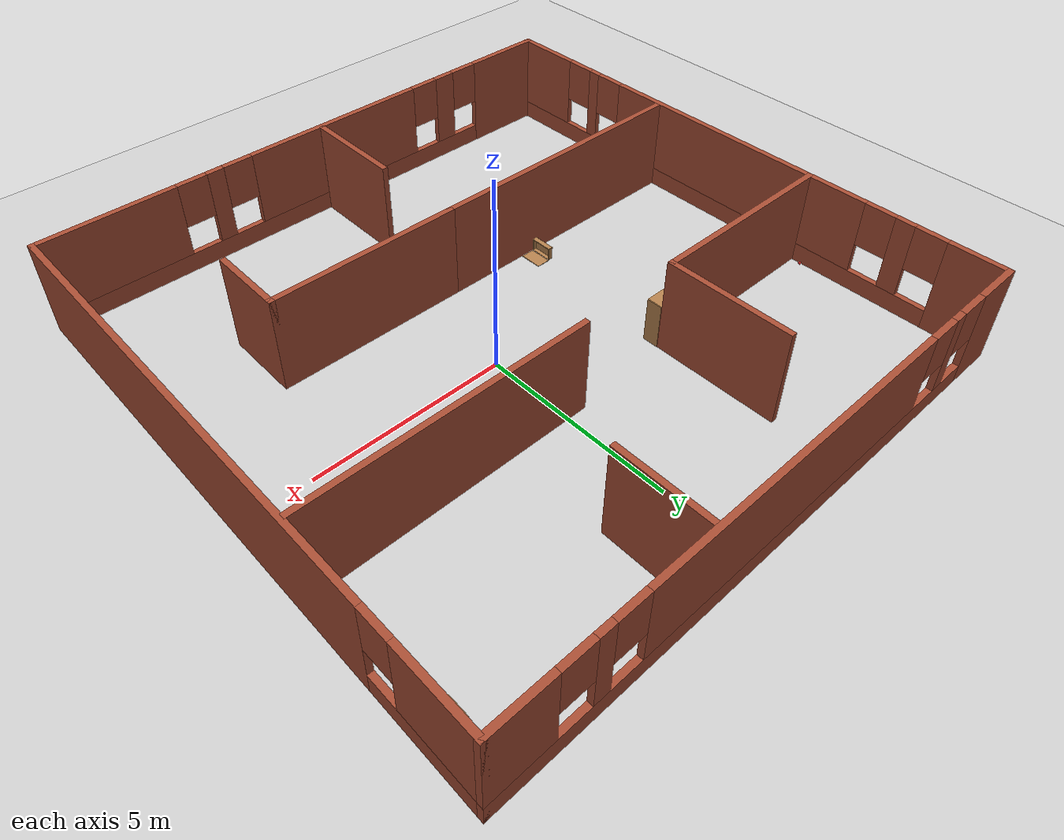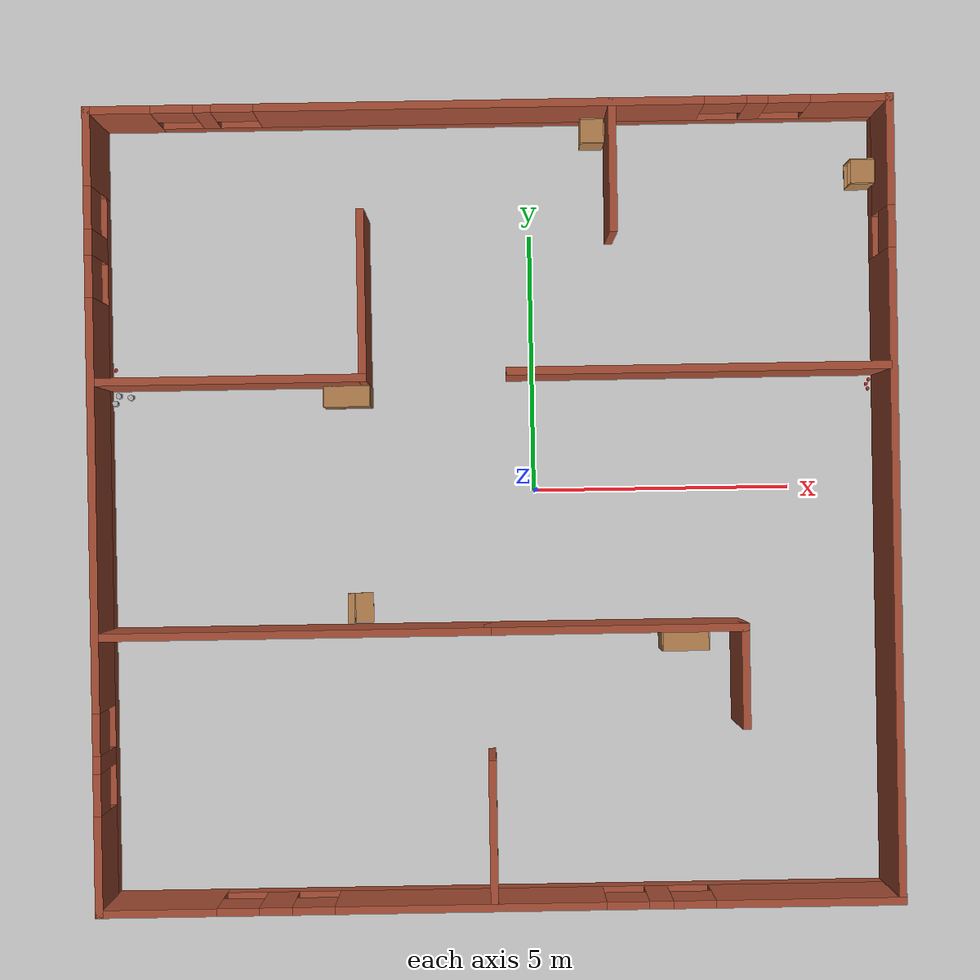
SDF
<sdf version="1.7">
 <world name="default">
  <light name="sun" type="directional">
   <pose>0 0 10 0 -0 0</pose>
   <diffuse>0.8 0.8 0.8 1</diffuse>
   <specular>0.2 0.2 0.2 1</specular>
   <attenuation>
    <range>1000</range>
    <constant>0.9</constant>
    <linear>0.01</linear>
    <quadratic>0.001</quadratic>
   </attenuation>
   <direction>-0.5 0.1 -0.9</direction>
   <spot><inner_angle>0</inner_angle><outer_angle>0</outer_angle><falloff>0</falloff></spot>
  </light>
  <gravity>0 0 -9.8</gravity>
  <magnetic_field>6e-06 2.3e-05 -4.2e-05</magnetic_field>
  <atmosphere type="adiabatic"/>
  <physics type="ode">
   <max_step_size>0.001</max_step_size>
   <real_time_factor>1</real_time_factor>
   <real_time_update_rate>1000</real_time_update_rate>
  </physics>
  <scene><ambient>0.4 0.4 0.4 1</ambient><background>0.7 0.7 0.7 1</background><shadows>1</shadows></scene>
  <audio><device>default</device></audio>
  <spherical_coordinates>
   <surface_model>EARTH_WGS84</surface_model>
   <latitude_deg>0</latitude_deg>
   <longitude_deg>0</longitude_deg>
   <elevation>0</elevation>
   <heading_deg>0</heading_deg>
  </spherical_coordinates>
  <model name="Untitled">
   <pose>-0.78287 -0.28522 0 0 -0 0</pose>
   <link name="Wall_0">
    <pose>-7.55 0 0 0 -0 -1.5708</pose>
    <visual name="Wall_0_Visual_0">
     <pose>-6.87927 0 1.25 0 -0 0</pose>
     <geometry><box><size>1.49145 0.15 2.5</size></box></geometry>
     <material>
      <script><uri>file://media/materials/scripts/gazebo.material</uri><name>Gazebo/Bricks</name></script>
      <ambient>1 1 1 1</ambient>
     </material>
     <meta><layer>0</layer></meta>
    </visual>
    <collision name="Wall_0_Collision_0">
     <geometry><box><size>1.49145 0.15 2.5</size></box></geometry>
     <pose>-6.87927 0 1.25 0 -0 0</pose>
    </collision>
    <visual name="Wall_0_Visual_1">
     <pose>0.745725 0 0.25 0 -0 0</pose>
     <geometry><box><size>13.7586 0.15 0.5</size></box></geometry>
     <material>
      <script><uri>file://media/materials/scripts/gazebo.material</uri><name>Gazebo/Bricks</name></script>
      <ambient>1 1 1 1</ambient>
     </material>
     <meta><layer>0</layer></meta>
    </visual>
    <collision name="Wall_0_Collision_1">
     <geometry><box><size>13.7586 0.15 0.5</size></box></geometry>
     <pose>0.745725 0 0.25 0 -0 0</pose>
    </collision>
    <visual name="Wall_0_Visual_2">
     <pose>-5.08626 0 1.5 0 -0 0</pose>
     <geometry><box><size>0.494579 0.15 2</size></box></geometry>
     <material>
      <script><uri>file://media/materials/scripts/gazebo.material</uri><name>Gazebo/Bricks</name></script>
      <ambient>1 1 1 1</ambient>
     </material>
     <meta><layer>0</layer></meta>
    </visual>
    <collision name="Wall_0_Collision_2">
     <geometry><box><size>0.494579 0.15 2</size></box></geometry>
     <pose>-5.08626 0 1.5 0 -0 0</pose>
    </collision>
    <visual name="Wall_0_Visual_3">
     <pose>-0.130454 0 1.5 0 -0 0</pose>
     <geometry><box><size>7.81704 0.15 2</size></box></geometry>
     <material>
      <script><uri>file://media/materials/scripts/gazebo.material</uri><name>Gazebo/Bricks</name></script>
      <ambient>1 1 1 1</ambient>
     </material>
     <meta><layer>0</layer></meta>
    </visual>
    <collision name="Wall_0_Collision_3">
     <geometry><box><size>7.81704 0.15 2</size></box></geometry>
     <pose>-0.130454 0 1.5 0 -0 0</pose>
    </collision>
    <visual name="Wall_0_Visual_4">
     <pose>4.74444 0 1.5 0 -0 0</pose>
     <geometry><box><size>0.332756 0.15 2</size></box></geometry>
     <material>
      <script><uri>file://media/materials/scripts/gazebo.material</uri><name>Gazebo/Bricks</name></script>
      <ambient>1 1 1 1</ambient>
     </material>
     <meta><layer>0</layer></meta>
    </visual>
    <collision name="Wall_0_Collision_4">
     <geometry><box><size>0.332756 0.15 2</size></box></geometry>
     <pose>4.74444 0 1.5 0 -0 0</pose>
    </collision>
    <visual name="Wall_0_Visual_5">
     <pose>6.66791 0 1.5 0 -0 0</pose>
     <geometry><box><size>1.91418 0.15 2</size></box></geometry>
     <material>
      <script><uri>file://media/materials/scripts/gazebo.material</uri><name>Gazebo/Bricks</name></script>
      <ambient>1 1 1 1</ambient>
     </material>
     <meta><layer>0</layer></meta>
    </visual>
    <collision name="Wall_0_Collision_5">
     <geometry><box><size>1.91418 0.15 2</size></box></geometry>
     <pose>6.66791 0 1.5 0 -0 0</pose>
    </collision>
    <visual name="Wall_0_Visual_6">
     <pose>-5.73355 0 1.9 0 -0 0</pose>
     <geometry><box><size>0.8 0.15 1.2</size></box></geometry>
     <material>
      <script><uri>file://media/materials/scripts/gazebo.material</uri><name>Gazebo/Bricks</name></script>
      <ambient>1 1 1 1</ambient>
     </material>
     <meta><layer>0</layer></meta>
    </visual>
    <collision name="Wall_0_Collision_6">
     <geometry><box><size>0.8 0.15 1.2</size></box></geometry>
     <pose>-5.73355 0 1.9 0 -0 0</pose>
    </collision>
    <visual name="Wall_0_Visual_7">
     <pose>-4.43897 0 1.9 0 -0 0</pose>
     <geometry><box><size>0.8 0.15 1.2</size></box></geometry>
     <material>
      <script><uri>file://media/materials/scripts/gazebo.material</uri><name>Gazebo/Bricks</name></script>
      <ambient>1 1 1 1</ambient>
     </material>
     <meta><layer>0</layer></meta>
    </visual>
    <collision name="Wall_0_Collision_7">
     <geometry><box><size>0.8 0.15 1.2</size></box></geometry>
     <pose>-4.43897 0 1.9 0 -0 0</pose>
    </collision>
    <visual name="Wall_0_Visual_8">
     <pose>4.17807 0 1.9 0 -0 0</pose>
     <geometry><box><size>0.8 0.15 1.2</size></box></geometry>
     <material>
      <script><uri>file://media/materials/scripts/gazebo.material</uri><name>Gazebo/Bricks</name></script>
      <ambient>1 1 1 1</ambient>
     </material>
     <meta><layer>0</layer></meta>
    </visual>
    <collision name="Wall_0_Collision_8">
     <geometry><box><size>0.8 0.15 1.2</size></box></geometry>
     <pose>4.17807 0 1.9 0 -0 0</pose>
    </collision>
    <visual name="Wall_0_Visual_9">
     <pose>5.31082 0 1.9 0 -0 0</pose>
     <geometry><box><size>0.8 0.15 1.2</size></box></geometry>
     <material>
      <script><uri>file://media/materials/scripts/gazebo.material</uri><name>Gazebo/Bricks</name></script>
      <ambient>1 1 1 1</ambient>
     </material>
     <meta><layer>0</layer></meta>
    </visual>
    <collision name="Wall_0_Collision_9">
     <geometry><box><size>0.8 0.15 1.2</size></box></geometry>
     <pose>5.31082 0 1.9 0 -0 0</pose>
    </collision>
   </link>
   <link name="Wall_11">
    <collision name="Wall_11_Collision">
     <geometry><box><size>2.5 0.15 2.5</size></box></geometry>
     <pose>0 0 1.25 0 -0 0</pose>
    </collision>
    <visual name="Wall_11_Visual">
     <pose>0 0 1.25 0 -0 0</pose>
     <geometry><box><size>2.5 0.15 2.5</size></box></geometry>
     <material>
      <script><uri>file://media/materials/scripts/gazebo.material</uri><name>Gazebo/Bricks</name></script>
      <ambient>1 1 1 1</ambient>
     </material>
     <meta><layer>0</layer></meta>
    </visual>
    <pose>2.33157 6.36777 0 0 -0 -1.5708</pose>
   </link>
   <link name="Wall_13">
    <collision name="Wall_13_Collision">
     <geometry><box><size>7.25 0.15 2.5</size></box></geometry>
     <pose>0 0 1.25 0 -0 0</pose>
    </collision>
    <visual name="Wall_13_Visual">
     <pose>0 0 1.25 0 -0 0</pose>
     <geometry><box><size>7.25 0.15 2.5</size></box></geometry>
     <material>
      <script><uri>file://media/materials/scripts/gazebo.material</uri><name>Gazebo/Bricks</name></script>
      <ambient>1 1 1 1</ambient>
     </material>
     <meta><layer>0</layer></meta>
    </visual>
    <pose>3.89013 2.52597 0 0 -0 3.14159</pose>
   </link>
   <link name="Wall_15">
    <collision name="Wall_15_Collision">
     <geometry><box><size>7.5 0.15 2.5</size></box></geometry>
     <pose>0 0 1.25 0 -0 0</pose>
    </collision>
    <visual name="Wall_15_Visual">
     <pose>0 0 1.25 0 -0 0</pose>
     <geometry><box><size>7.5 0.15 2.5</size></box></geometry>
     <material>
      <script><uri>file://media/materials/scripts/gazebo.material</uri><name>Gazebo/Bricks</name></script>
      <ambient>1 1 1 1</ambient>
     </material>
     <meta><layer>0</layer></meta>
    </visual>
    <pose>-3.84578 -2.35756 0 0 -0 0</pose>
   </link>
   <link name="Wall_17">
    <collision name="Wall_17_Collision">
     <geometry><box><size>2.75 0.15 2.5</size></box></geometry>
     <pose>0 0 1.25 0 -0 0</pose>
    </collision>
    <visual name="Wall_17_Visual">
     <pose>0 0 1.25 0 -0 0</pose>
     <geometry><box><size>2.75 0.15 2.5</size></box></geometry>
     <material>
      <script><uri>file://media/materials/scripts/gazebo.material</uri><name>Gazebo/Bricks</name></script>
      <ambient>1 1 1 1</ambient>
     </material>
     <meta><layer>0</layer></meta>
    </visual>
    <pose>-0.117405 -6.15497 0 0 -0 1.5708</pose>
   </link>
   <link name="Wall_19">
    <collision name="Wall_19_Collision">
     <geometry><box><size>5 0.15 2.5</size></box></geometry>
     <pose>0 0 1.25 0 -0 0</pose>
    </collision>
    <visual name="Wall_19_Visual">
     <pose>0 0 1.25 0 -0 0</pose>
     <geometry><box><size>5 0.15 2.5</size></box></geometry>
     <material>
      <script><uri>file://media/materials/scripts/gazebo.material</uri><name>Gazebo/Bricks</name></script>
      <ambient>1 1 1 1</ambient>
     </material>
     <meta><layer>0</layer></meta>
    </visual>
    <pose>2.25422 -2.35756 0 0 -0 0</pose>
   </link>
   <link name="Wall_2">
    <pose>-0 -7.55 0 0 -0 0</pose>
    <visual name="Wall_2_Visual_0">
     <pose>-6.48153 0 1.25 0 -0 0</pose>
     <geometry><box><size>2.28693 0.15 2.5</size></box></geometry>
     <material>
      <script><uri>file://media/materials/scripts/gazebo.material</uri><name>Gazebo/Bricks</name></script>
      <ambient>1 1 1 1</ambient>
     </material>
     <meta><layer>0</layer></meta>
    </visual>
    <collision name="Wall_2_Collision_0">
     <geometry><box><size>2.28693 0.15 2.5</size></box></geometry>
     <pose>-6.48153 0 1.25 0 -0 0</pose>
    </collision>
    <visual name="Wall_2_Visual_1">
     <pose>1.14347 0 0.25 0 -0 0</pose>
     <geometry><box><size>12.9631 0.15 0.5</size></box></geometry>
     <material>
      <script><uri>file://media/materials/scripts/gazebo.material</uri><name>Gazebo/Bricks</name></script>
      <ambient>1 1 1 1</ambient>
     </material>
     <meta><layer>0</layer></meta>
    </visual>
    <collision name="Wall_2_Collision_1">
     <geometry><box><size>12.9631 0.15 0.5</size></box></geometry>
     <pose>1.14347 0 0.25 0 -0 0</pose>
    </collision>
    <visual name="Wall_2_Visual_2">
     <pose>-4.2301 0 1.5 0 -0 0</pose>
     <geometry><box><size>0.615945 0.15 2</size></box></geometry>
     <material>
      <script><uri>file://media/materials/scripts/gazebo.material</uri><name>Gazebo/Bricks</name></script>
      <ambient>1 1 1 1</ambient>
     </material>
     <meta><layer>0</layer></meta>
    </visual>
    <collision name="Wall_2_Collision_2">
     <geometry><box><size>0.615945 0.15 2</size></box></geometry>
     <pose>-4.2301 0 1.5 0 -0 0</pose>
    </collision>
    <visual name="Wall_2_Visual_3">
     <pose>-0.565642 0 1.5 0 -0 0</pose>
     <geometry><box><size>5.11296 0.15 2</size></box></geometry>
     <material>
      <script><uri>file://media/materials/scripts/gazebo.material</uri><name>Gazebo/Bricks</name></script>
      <ambient>1 1 1 1</ambient>
     </material>
     <meta><layer>0</layer></meta>
    </visual>
    <collision name="Wall_2_Collision_3">
     <geometry><box><size>5.11296 0.15 2</size></box></geometry>
     <pose>-0.565642 0 1.5 0 -0 0</pose>
    </collision>
    <visual name="Wall_2_Visual_4">
     <pose>3.0179 0 1.5 0 -0 0</pose>
     <geometry><box><size>0.454123 0.15 2</size></box></geometry>
     <material>
      <script><uri>file://media/materials/scripts/gazebo.material</uri><name>Gazebo/Bricks</name></script>
      <ambient>1 1 1 1</ambient>
     </material>
     <meta><layer>0</layer></meta>
    </visual>
    <collision name="Wall_2_Collision_4">
     <geometry><box><size>0.454123 0.15 2</size></box></geometry>
     <pose>3.0179 0 1.5 0 -0 0</pose>
    </collision>
    <visual name="Wall_2_Visual_5">
     <pose>5.83498 0 1.5 0 -0 0</pose>
     <geometry><box><size>3.58004 0.15 2</size></box></geometry>
     <material>
      <script><uri>file://media/materials/scripts/gazebo.material</uri><name>Gazebo/Bricks</name></script>
      <ambient>1 1 1 1</ambient>
     </material>
     <meta><layer>0</layer></meta>
    </visual>
    <collision name="Wall_2_Collision_5">
     <geometry><box><size>3.58004 0.15 2</size></box></geometry>
     <pose>5.83498 0 1.5 0 -0 0</pose>
    </collision>
    <visual name="Wall_2_Visual_6">
     <pose>-4.93807 0 1.9 0 -0 0</pose>
     <geometry><box><size>0.8 0.15 1.2</size></box></geometry>
     <material>
      <script><uri>file://media/materials/scripts/gazebo.material</uri><name>Gazebo/Bricks</name></script>
      <ambient>1 1 1 1</ambient>
     </material>
     <meta><layer>0</layer></meta>
    </visual>
    <collision name="Wall_2_Collision_6">
     <geometry><box><size>0.8 0.15 1.2</size></box></geometry>
     <pose>-4.93807 0 1.9 0 -0 0</pose>
    </collision>
    <visual name="Wall_2_Visual_7">
     <pose>-3.52212 0 1.9 0 -0 0</pose>
     <geometry><box><size>0.8 0.15 1.2</size></box></geometry>
     <material>
      <script><uri>file://media/materials/scripts/gazebo.material</uri><name>Gazebo/Bricks</name></script>
      <ambient>1 1 1 1</ambient>
     </material>
     <meta><layer>0</layer></meta>
    </visual>
    <collision name="Wall_2_Collision_7">
     <geometry><box><size>0.8 0.15 1.2</size></box></geometry>
     <pose>-3.52212 0 1.9 0 -0 0</pose>
    </collision>
    <visual name="Wall_2_Visual_8">
     <pose>2.39084 0 1.9 0 -0 0</pose>
     <geometry><box><size>0.8 0.15 1.2</size></box></geometry>
     <material>
      <script><uri>file://media/materials/scripts/gazebo.material</uri><name>Gazebo/Bricks</name></script>
      <ambient>1 1 1 1</ambient>
     </material>
     <meta><layer>0</layer></meta>
    </visual>
    <collision name="Wall_2_Collision_8">
     <geometry><box><size>0.8 0.15 1.2</size></box></geometry>
     <pose>2.39084 0 1.9 0 -0 0</pose>
    </collision>
    <visual name="Wall_2_Visual_9">
     <pose>3.64496 0 1.9 0 -0 0</pose>
     <geometry><box><size>0.8 0.15 1.2</size></box></geometry>
     <material>
      <script><uri>file://media/materials/scripts/gazebo.material</uri><name>Gazebo/Bricks</name></script>
      <ambient>1 1 1 1</ambient>
     </material>
     <meta><layer>0</layer></meta>
    </visual>
    <collision name="Wall_2_Collision_9">
     <geometry><box><size>0.8 0.15 1.2</size></box></geometry>
     <pose>3.64496 0 1.9 0 -0 0</pose>
    </collision>
   </link>
   <link name="Wall_20">
    <collision name="Wall_20_Collision">
     <geometry><box><size>2 0.15 2.5</size></box></geometry>
     <pose>0 0 1.25 0 -0 0</pose>
    </collision>
    <visual name="Wall_20_Visual">
     <pose>0 0 1.25 0 -0 0</pose>
     <geometry><box><size>2 0.15 2.5</size></box></geometry>
     <material>
      <script><uri>file://media/materials/scripts/gazebo.material</uri><name>Gazebo/Bricks</name></script>
      <ambient>1 1 1 1</ambient>
     </material>
     <meta><layer>0</layer></meta>
    </visual>
    <pose>4.67922 -3.28256 0 0 -0 -1.5708</pose>
   </link>
   <link name="Wall_4">
    <pose>7.55 0 0 0 -0 1.5708</pose>
    <visual name="Wall_4_Visual_0">
     <pose>-1.44914 0 1.25 0 -0 0</pose>
     <geometry><box><size>12.3517 0.15 2.5</size></box></geometry>
     <material>
      <script><uri>file://media/materials/scripts/gazebo.material</uri><name>Gazebo/Bricks</name></script>
      <ambient>1 1 1 1</ambient>
     </material>
     <meta><layer>0</layer></meta>
    </visual>
    <collision name="Wall_4_Collision_0">
     <geometry><box><size>12.3517 0.15 2.5</size></box></geometry>
     <pose>-1.44914 0 1.25 0 -0 0</pose>
    </collision>
    <visual name="Wall_4_Visual_1">
     <pose>6.17586 0 0.25 0 -0 0</pose>
     <geometry><box><size>2.89828 0.15 0.5</size></box></geometry>
     <material>
      <script><uri>file://media/materials/scripts/gazebo.material</uri><name>Gazebo/Bricks</name></script>
      <ambient>1 1 1 1</ambient>
     </material>
     <meta><layer>0</layer></meta>
    </visual>
    <collision name="Wall_4_Collision_1">
     <geometry><box><size>2.89828 0.15 0.5</size></box></geometry>
     <pose>6.17586 0 0.25 0 -0 0</pose>
    </collision>
    <visual name="Wall_4_Visual_2">
     <pose>6.57586 0 1.5 0 -0 0</pose>
     <geometry><box><size>2.09828 0.15 2</size></box></geometry>
     <material>
      <script><uri>file://media/materials/scripts/gazebo.material</uri><name>Gazebo/Bricks</name></script>
      <ambient>1 1 1 1</ambient>
     </material>
     <meta><layer>0</layer></meta>
    </visual>
    <collision name="Wall_4_Collision_2">
     <geometry><box><size>2.09828 0.15 2</size></box></geometry>
     <pose>6.57586 0 1.5 0 -0 0</pose>
    </collision>
    <visual name="Wall_4_Visual_3">
     <pose>5.12672 0 1.9 0 -0 0</pose>
     <geometry><box><size>0.8 0.15 1.2</size></box></geometry>
     <material>
      <script><uri>file://media/materials/scripts/gazebo.material</uri><name>Gazebo/Bricks</name></script>
      <ambient>1 1 1 1</ambient>
     </material>
     <meta><layer>0</layer></meta>
    </visual>
    <collision name="Wall_4_Collision_3">
     <geometry><box><size>0.8 0.15 1.2</size></box></geometry>
     <pose>5.12672 0 1.9 0 -0 0</pose>
    </collision>
   </link>
   <link name="Wall_6">
    <pose>-0 7.55 0 0 -0 0</pose>
    <visual name="Wall_6_Visual_0">
     <pose>-6.984 0 1.25 0 -0 0</pose>
     <geometry><box><size>1.28199 0.15 2.5</size></box></geometry>
     <material>
      <script><uri>file://media/materials/scripts/gazebo.material</uri><name>Gazebo/Bricks</name></script>
      <ambient>1 1 1 1</ambient>
     </material>
     <meta><layer>0</layer></meta>
    </visual>
    <collision name="Wall_6_Collision_0">
     <geometry><box><size>1.28199 0.15 2.5</size></box></geometry>
     <pose>-6.984 0 1.25 0 -0 0</pose>
    </collision>
    <visual name="Wall_6_Visual_1">
     <pose>0.640996 0 0.25 0 -0 0</pose>
     <geometry><box><size>13.968 0.15 0.5</size></box></geometry>
     <material>
      <script><uri>file://media/materials/scripts/gazebo.material</uri><name>Gazebo/Bricks</name></script>
      <ambient>1 1 1 1</ambient>
     </material>
     <meta><layer>0</layer></meta>
    </visual>
    <collision name="Wall_6_Collision_1">
     <geometry><box><size>13.968 0.15 0.5</size></box></geometry>
     <pose>0.640996 0 0.25 0 -0 0</pose>
    </collision>
    <visual name="Wall_6_Visual_2">
     <pose>-5.37663 0 1.5 0 -0 0</pose>
     <geometry><box><size>0.332756 0.15 2</size></box></geometry>
     <material>
      <script><uri>file://media/materials/scripts/gazebo.material</uri><name>Gazebo/Bricks</name></script>
      <ambient>1 1 1 1</ambient>
     </material>
     <meta><layer>0</layer></meta>
    </visual>
    <collision name="Wall_6_Collision_2">
     <geometry><box><size>0.332756 0.15 2</size></box></geometry>
     <pose>-5.37663 0 1.5 0 -0 0</pose>
    </collision>
    <visual name="Wall_6_Visual_3">
     <pose>-0.171694 0 1.5 0 -0 0</pose>
     <geometry><box><size>8.47712 0.15 2</size></box></geometry>
     <material>
      <script><uri>file://media/materials/scripts/gazebo.material</uri><name>Gazebo/Bricks</name></script>
      <ambient>1 1 1 1</ambient>
     </material>
     <meta><layer>0</layer></meta>
    </visual>
    <collision name="Wall_6_Collision_3">
     <geometry><box><size>8.47712 0.15 2</size></box></geometry>
     <pose>-0.171694 0 1.5 0 -0 0</pose>
    </collision>
    <visual name="Wall_6_Visual_4">
     <pose>5.0673 0 1.5 0 -0 0</pose>
     <geometry><box><size>0.400877 0.15 2</size></box></geometry>
     <material>
      <script><uri>file://media/materials/scripts/gazebo.material</uri><name>Gazebo/Bricks</name></script>
      <ambient>1 1 1 1</ambient>
     </material>
     <meta><layer>0</layer></meta>
    </visual>
    <collision name="Wall_6_Collision_4">
     <geometry><box><size>0.400877 0.15 2</size></box></geometry>
     <pose>5.0673 0 1.5 0 -0 0</pose>
    </collision>
    <visual name="Wall_6_Visual_5">
     <pose>6.84637 0 1.5 0 -0 0</pose>
     <geometry><box><size>1.55726 0.15 2</size></box></geometry>
     <material>
      <script><uri>file://media/materials/scripts/gazebo.material</uri><name>Gazebo/Bricks</name></script>
      <ambient>1 1 1 1</ambient>
     </material>
     <meta><layer>0</layer></meta>
    </visual>
    <collision name="Wall_6_Collision_5">
     <geometry><box><size>1.55726 0.15 2</size></box></geometry>
     <pose>6.84637 0 1.5 0 -0 0</pose>
    </collision>
    <visual name="Wall_6_Visual_6">
     <pose>-5.94301 0 1.9 0 -0 0</pose>
     <geometry><box><size>0.8 0.15 1.2</size></box></geometry>
     <material>
      <script><uri>file://media/materials/scripts/gazebo.material</uri><name>Gazebo/Bricks</name></script>
      <ambient>1 1 1 1</ambient>
     </material>
     <meta><layer>0</layer></meta>
    </visual>
    <collision name="Wall_6_Collision_6">
     <geometry><box><size>0.8 0.15 1.2</size></box></geometry>
     <pose>-5.94301 0 1.9 0 -0 0</pose>
    </collision>
    <visual name="Wall_6_Visual_7">
     <pose>-4.81025 0 1.9 0 -0 0</pose>
     <geometry><box><size>0.8 0.15 1.2</size></box></geometry>
     <material>
      <script><uri>file://media/materials/scripts/gazebo.material</uri><name>Gazebo/Bricks</name></script>
      <ambient>1 1 1 1</ambient>
     </material>
     <meta><layer>0</layer></meta>
    </visual>
    <collision name="Wall_6_Collision_7">
     <geometry><box><size>0.8 0.15 1.2</size></box></geometry>
     <pose>-4.81025 0 1.9 0 -0 0</pose>
    </collision>
    <visual name="Wall_6_Visual_8">
     <pose>4.46687 0 1.9 0 -0 0</pose>
     <geometry><box><size>0.8 0.15 1.2</size></box></geometry>
     <material>
      <script><uri>file://media/materials/scripts/gazebo.material</uri><name>Gazebo/Bricks</name></script>
      <ambient>1 1 1 1</ambient>
     </material>
     <meta><layer>0</layer></meta>
    </visual>
    <collision name="Wall_6_Collision_8">
     <geometry><box><size>0.8 0.15 1.2</size></box></geometry>
     <pose>4.46687 0 1.9 0 -0 0</pose>
    </collision>
    <visual name="Wall_6_Visual_9">
     <pose>5.66774 0 1.9 0 -0 0</pose>
     <geometry><box><size>0.8 0.15 1.2</size></box></geometry>
     <material>
      <script><uri>file://media/materials/scripts/gazebo.material</uri><name>Gazebo/Bricks</name></script>
      <ambient>1 1 1 1</ambient>
     </material>
     <meta><layer>0</layer></meta>
    </visual>
    <collision name="Wall_6_Collision_9">
     <geometry><box><size>0.8 0.15 1.2</size></box></geometry>
     <pose>5.66774 0 1.9 0 -0 0</pose>
    </collision>
   </link>
   <link name="Wall_8">
    <collision name="Wall_8_Collision">
     <geometry><box><size>5.25 0.15 2.5</size></box></geometry>
     <pose>0 0 1.25 0 -0 0</pose>
    </collision>
    <visual name="Wall_8_Visual">
     <pose>0 0 1.25 0 -0 0</pose>
     <geometry><box><size>5.25 0.15 2.5</size></box></geometry>
     <material>
      <script><uri>file://media/materials/scripts/gazebo.material</uri><name>Gazebo/Bricks</name></script>
      <ambient>1 1 1 1</ambient>
     </material>
     <meta><layer>0</layer></meta>
    </visual>
    <pose>-4.98744 2.44703 0 0 -0 0</pose>
   </link>
   <link name="Wall_9">
    <collision name="Wall_9_Collision">
     <geometry><box><size>3.25 0.15 2.5</size></box></geometry>
     <pose>0 0 1.25 0 -0 0</pose>
    </collision>
    <visual name="Wall_9_Visual">
     <pose>0 0 1.25 0 -0 0</pose>
     <geometry><box><size>3.25 0.15 2.5</size></box></geometry>
     <material>
      <script><uri>file://media/materials/scripts/gazebo.material</uri><name>Gazebo/Bricks</name></script>
      <ambient>1 1 1 1</ambient>
     </material>
     <meta><layer>0</layer></meta>
    </visual>
    <pose>-2.43744 3.99703 0 0 -0 1.5708</pose>
   </link>
   <static>1</static>
  </model>
  <light name="user_point_light_0" type="point">
   <pose>-2.32917 0.106727 1 0 -0 0</pose>
   <diffuse>0.5 0.5 0.5 1</diffuse>
   <specular>0.1 0.1 0.1 1</specular>
   <attenuation>
    <range>20</range>
    <constant>0.5</constant>
    <linear>0.01</linear>
    <quadratic>0.001</quadratic>
   </attenuation>
   <cast_shadows>0</cast_shadows>
   <direction>0 0 -1</direction>
   <spot><inner_angle>0</inner_angle><outer_angle>0</outer_angle><falloff>0</falloff></spot>
  </light>
  <light name="user_point_light_1" type="point">
   <pose>2.91099 -0.653046 1 0 -0 0</pose>
   <diffuse>0.5 0.5 0.5 1</diffuse>
   <specular>0.1 0.1 0.1 1</specular>
   <attenuation>
    <range>20</range>
    <constant>0.5</constant>
    <linear>0.01</linear>
    <quadratic>0.001</quadratic>
   </attenuation>
   <cast_shadows>0</cast_shadows>
   <direction>0 0 -1</direction>
   <spot><inner_angle>0</inner_angle><outer_angle>0</outer_angle><falloff>0</falloff></spot>
  </light>
  <light name="user_point_light_2" type="point">
   <pose>-4.89719 -4.93644 1 0 -0 0</pose>
   <diffuse>0.5 0.5 0.5 1</diffuse>
   <specular>0.1 0.1 0.1 1</specular>
   <attenuation>
    <range>20</range>
    <constant>0.5</constant>
    <linear>0.01</linear>
    <quadratic>0.001</quadratic>
   </attenuation>
   <cast_shadows>0</cast_shadows>
   <direction>0 0 -1</direction>
   <spot><inner_angle>0</inner_angle><outer_angle>0</outer_angle><falloff>0</falloff></spot>
  </light>
  <light name="user_point_light_3" type="point">
   <pose>3.21281 -5.95708 1 0 -0 0</pose>
   <diffuse>0.5 0.5 0.5 1</diffuse>
   <specular>0.1 0.1 0.1 1</specular>
   <attenuation>
    <range>20</range>
    <constant>0.5</constant>
    <linear>0.01</linear>
    <quadratic>0.001</quadratic>
   </attenuation>
   <cast_shadows>0</cast_shadows>
   <direction>0 0 -1</direction>
   <spot><inner_angle>0</inner_angle><outer_angle>0</outer_angle><falloff>0</falloff></spot>
  </light>
  <light name="user_point_light_4" type="point">
   <pose>4.02539 5.71706 1 0 -0 0</pose>
   <diffuse>0.5 0.5 0.5 1</diffuse>
   <specular>0.1 0.1 0.1 1</specular>
   <attenuation>
    <range>20</range>
    <constant>0.5</constant>
    <linear>0.01</linear>
    <quadratic>0.001</quadratic>
   </attenuation>
   <cast_shadows>0</cast_shadows>
   <direction>0 0 -1</direction>
   <spot><inner_angle>0</inner_angle><outer_angle>0</outer_angle><falloff>0</falloff></spot>
  </light>
  <model name="ground_plane">
   <static>1</static>
   <link name="link">
    <collision name="collision">
     <geometry><plane><normal>0 0 1</normal><size>100 100</size></plane></geometry>
     <surface>
      <contact><collide_bitmask>65535</collide_bitmask></contact>
      <friction><ode><mu>100</mu><mu2>50</mu2></ode></friction>
     </surface>
    </collision>
    <visual name="visual">
     <cast_shadows>0</cast_shadows>
     <geometry><plane><normal>0 0 1</normal><size>100 100</size></plane></geometry>
     <material>
      <script><uri>file://media/materials/scripts/gazebo.material</uri><name>Gazebo/Grey</name></script>
     </material>
    </visual>
   </link>
  </model>
  <model name="bookshelf">
   <static>1</static>
   <link name="link">
    <inertial><mass>1</mass></inertial>
    <collision name="back">
     <pose>0 0.005 0.6 0 -0 0</pose>
     <geometry><box><size>0.9 0.01 1.2</size></box></geometry>
    </collision>
    <visual name="visual1">
     <pose>0 0.005 0.6 0 -0 0</pose>
     <geometry><box><size>0.9 0.01 1.2</size></box></geometry>
     <material>
      <script><uri>file://media/materials/scripts/gazebo.material</uri><name>Gazebo/Wood</name></script>
     </material>
    </visual>
    <collision name="left_side">
     <pose>0.45 -0.195 0.6 0 -0 0</pose>
     <geometry><box><size>0.02 0.4 1.2</size></box></geometry>
    </collision>
    <visual name="visual2">
     <pose>0.45 -0.195 0.6 0 -0 0</pose>
     <geometry><box><size>0.02 0.4 1.2</size></box></geometry>
     <material>
      <script><uri>file://media/materials/scripts/gazebo.material</uri><name>Gazebo/Wood</name></script>
     </material>
    </visual>
    <collision name="right_side">
     <pose>-0.45 -0.195 0.6 0 -0 0</pose>
     <geometry><box><size>0.02 0.4 1.2</size></box></geometry>
    </collision>
    <visual name="visual3">
     <pose>-0.45 -0.195 0.6 0 -0 0</pose>
     <geometry><box><size>0.02 0.4 1.2</size></box></geometry>
     <material>
      <script><uri>file://media/materials/scripts/gazebo.material</uri><name>Gazebo/Wood</name></script>
     </material>
    </visual>
    <collision name="bottom">
     <pose>0 -0.195 0.03 0 -0 0</pose>
     <geometry><box><size>0.88 0.4 0.06</size></box></geometry>
    </collision>
    <visual name="visual4">
     <pose>0 -0.195 0.03 0 -0 0</pose>
     <geometry><box><size>0.88 0.4 0.06</size></box></geometry>
     <material>
      <script><uri>file://media/materials/scripts/gazebo.material</uri><name>Gazebo/Wood</name></script>
     </material>
    </visual>
    <collision name="top">
     <pose>0 -0.195 1.19 0 -0 0</pose>
     <geometry><box><size>0.88 0.4 0.02</size></box></geometry>
    </collision>
    <visual name="visual5">
     <pose>0 -0.195 1.19 0 -0 0</pose>
     <geometry><box><size>0.88 0.4 0.02</size></box></geometry>
     <material>
      <script><uri>file://media/materials/scripts/gazebo.material</uri><name>Gazebo/Wood</name></script>
     </material>
    </visual>
    <collision name="low_shelf">
     <pose>0 -0.195 0.43 0 -0 0</pose>
     <geometry><box><size>0.88 0.4 0.02</size></box></geometry>
    </collision>
    <visual name="visual6">
     <pose>0 -0.195 0.43 0 -0 0</pose>
     <geometry><box><size>0.88 0.4 0.02</size></box></geometry>
     <material>
      <script><uri>file://media/materials/scripts/gazebo.material</uri><name>Gazebo/Wood</name></script>
     </material>
    </visual>
    <collision name="high_shelf">
     <pose>0 -0.195 0.8 0 -0 0</pose>
     <geometry><box><size>0.88 0.4 0.02</size></box></geometry>
    </collision>
    <visual name="visual7">
     <pose>0 -0.195 0.8 0 -0 0</pose>
     <geometry><box><size>0.88 0.4 0.02</size></box></geometry>
     <material>
      <script><uri>file://media/materials/scripts/gazebo.material</uri><name>Gazebo/Wood</name></script>
     </material>
    </visual>
   </link>
   <pose>-3.59548 2.07132 0 0 -0 0</pose>
  </model>
  <model name="beer">
   <link name="link">
    <pose>0 0 0.115 0 -0 0</pose>
    <inertial>
     <mass>0.39</mass>
     <inertia><ixx>0.00058</ixx><ixy>0</ixy><ixz>0</ixz><iyy>0.00058</iyy><iyz>0</iyz><izz>0.00019</izz></inertia>
    </inertial>
    <collision name="collision">
     <geometry><cylinder><radius>0.055</radius><length>0.23</length></cylinder></geometry>
    </collision>
    <visual name="visual">
     <geometry><cylinder><radius>0.055</radius><length>0.23</length></cylinder></geometry>
     <material>
      <script>
       <uri>model://beer/materials/scripts</uri>
       <uri>model://beer/materials/textures</uri>
       <name>Beer/Diffuse</name>
      </script>
     </material>
    </visual>
   </link>
   <pose>-8.1318 1.99613 -2e-06 1e-06 -0 -5.6e-05</pose>
  </model>
  <model name="beer_0">
   <link name="link">
    <pose>0 0 0.115 0 -0 0</pose>
    <inertial>
     <mass>0.39</mass>
     <inertia><ixx>0.00058</ixx><ixy>0</ixy><ixz>0</ixz><iyy>0.00058</iyy><iyz>0</iyz><izz>0.00019</izz></inertia>
    </inertial>
    <collision name="collision">
     <geometry><cylinder><radius>0.055</radius><length>0.23</length></cylinder></geometry>
    </collision>
    <visual name="visual">
     <geometry><cylinder><radius>0.055</radius><length>0.23</length></cylinder></geometry>
     <material>
      <script>
       <uri>model://beer/materials/scripts</uri>
       <uri>model://beer/materials/textures</uri>
       <name>Beer/Diffuse</name>
      </script>
     </material>
    </visual>
   </link>
   <pose>-8.20285 1.84889 -6e-06 -0 -0 -6.3e-05</pose>
  </model>
  <model name="beer_1">
   <link name="link">
    <pose>0 0 0.115 0 -0 0</pose>
    <inertial>
     <mass>0.39</mass>
     <inertia><ixx>0.00058</ixx><ixy>0</ixy><ixz>0</ixz><iyy>0.00058</iyy><iyz>0</iyz><izz>0.00019</izz></inertia>
    </inertial>
    <collision name="collision">
     <geometry><cylinder><radius>0.055</radius><length>0.23</length></cylinder></geometry>
    </collision>
    <visual name="visual">
     <geometry><cylinder><radius>0.055</radius><length>0.23</length></cylinder></geometry>
     <material>
      <script>
       <uri>model://beer/materials/scripts</uri>
       <uri>model://beer/materials/textures</uri>
       <name>Beer/Diffuse</name>
      </script>
     </material>
    </visual>
   </link>
   <pose>-7.8961 1.96064 -6e-06 -0 -0 -6.1e-05</pose>
  </model>
  <model name="cabinet">
   <static>1</static>
   <link name="cabinet_bottom_plate">
    <inertial>
     <pose>0 0 -1 0 -0 0</pose>
     <inertia><ixx>2.05</ixx><ixy>0</ixy><ixz>0</ixz><iyy>2.05</iyy><iyz>0</iyz><izz>2.05</izz></inertia>
     <mass>25</mass>
    </inertial>
    <collision name="cabinet_bottom_plate_geom">
     <pose>0 0 0.01 0 -0 0</pose>
     <geometry><box><size>0.45 0.45 0.02</size></box></geometry>
    </collision>
    <visual name="cabinet_bottom_plate_geom_visual">
     <pose>0 0 0.01 0 -0 0</pose>
     <geometry><box><size>0.45 0.45 0.02</size></box></geometry>
     <material>
      <script><uri>file://media/materials/scripts/gazebo.material</uri><name>Gazebo/Wood</name></script>
     </material>
    </visual>
    <collision name="cabinet_bottom_plate_geom_cabinet_back_plate">
     <pose>0.235 0 0.51 0 -0 0</pose>
     <geometry><box><size>0.02 0.45 1.02</size></box></geometry>
    </collision>
    <visual name="cabinet_bottom_plate_geom_cabinet_back_plate_visual">
     <pose>0.235 0 0.51 0 -0 0</pose>
     <geometry><box><size>0.02 0.45 1.02</size></box></geometry>
     <material>
      <script><uri>file://media/materials/scripts/gazebo.material</uri><name>Gazebo/Wood</name></script>
     </material>
    </visual>
    <collision name="cabinet_bottom_plate_geom_cabinet_left_plate">
     <pose>0 0.235 0.51 0 -0 0</pose>
     <geometry><box><size>0.45 0.02 1.02</size></box></geometry>
    </collision>
    <visual name="cabinet_bottom_plate_geom_cabinet_left_plate_visual">
     <pose>0 0.235 0.51 0 -0 0</pose>
     <geometry><box><size>0.45 0.02 1.02</size></box></geometry>
     <material>
      <script><uri>file://media/materials/scripts/gazebo.material</uri><name>Gazebo/Wood</name></script>
     </material>
    </visual>
    <collision name="cabinet_bottom_plate_geom_cabinet_middle_plate">
     <pose>0 0 0.51 0 -0 0</pose>
     <geometry><box><size>0.45 0.45 0.02</size></box></geometry>
    </collision>
    <visual name="cabinet_bottom_plate_geom_cabinet_middle_plate_visual">
     <pose>0 0 0.51 0 -0 0</pose>
     <geometry><box><size>0.45 0.45 0.02</size></box></geometry>
     <material>
      <script><uri>file://media/materials/scripts/gazebo.material</uri><name>Gazebo/Wood</name></script>
     </material>
    </visual>
    <collision name="cabinet_bottom_plate_geom_cabinet_right_plate">
     <pose>0 -0.235 0.51 0 -0 0</pose>
     <geometry><box><size>0.45 0.02 1.02</size></box></geometry>
    </collision>
    <visual name="cabinet_bottom_plate_geom_cabinet_right_plate_visual">
     <pose>0 -0.235 0.51 0 -0 0</pose>
     <geometry><box><size>0.45 0.02 1.02</size></box></geometry>
     <material>
      <script><uri>file://media/materials/scripts/gazebo.material</uri><name>Gazebo/Wood</name></script>
     </material>
    </visual>
    <collision name="cabinet_bottom_plate_geom_cabinet_top_plate">
     <pose>0 0 1.01 0 -0 0</pose>
     <geometry><box><size>0.45 0.45 0.02</size></box></geometry>
    </collision>
    <visual name="cabinet_bottom_plate_geom_cabinet_top_plate_visual">
     <pose>0 0 1.01 0 -0 0</pose>
     <geometry><box><size>0.45 0.45 0.02</size></box></geometry>
     <material>
      <script><uri>file://media/materials/scripts/gazebo.material</uri><name>Gazebo/Wood</name></script>
     </material>
    </visual>
   </link>
   <pose>1.22335 6.93942 0 0 -0 0</pose>
  </model>
  <model name="cricket_ball">
   <link name="link">
    <pose>0 0 0.0375 0 -0 0</pose>
    <inertial>
     <mass>0.1467</mass>
     <inertia>
      <ixx>8.25187e-05</ixx>
      <ixy>0</ixy>
      <ixz>0</ixz>
      <iyy>8.25187e-05</iyy>
      <iyz>0</iyz>
      <izz>8.25187e-05</izz>
     </inertia>
    </inertial>
    <collision name="collision">
     <geometry><sphere><radius>0.0375</radius></sphere></geometry>
     <surface>
      <contact>
       <poissons_ratio>0.347</poissons_ratio>
       <elastic_modulus>8.8e+09</elastic_modulus>
       <ode><kp>100000</kp><kd>100</kd><max_vel>100</max_vel><min_depth>0.001</min_depth></ode>
      </contact>
      <friction>
       <torsional>
        <coefficient>1</coefficient>
        <use_patch_radius>0</use_patch_radius>
        <surface_radius>0.01</surface_radius>
       </torsional>
      </friction>
     </surface>
    </collision>
    <visual name="visual">
     <geometry><sphere><radius>0.0375</radius></sphere></geometry>
     <material>
      <script><uri>file://media/materials/scripts/gazebo.material</uri><name>Gazebo/Red</name></script>
     </material>
    </visual>
    <velocity_decay><linear>0</linear><angular>0.005</angular></velocity_decay>
   </link>
   <pose>6.64236 2.07978 -0.001014 0 -0 0</pose>
  </model>
  <model name="cricket_ball_0">
   <link name="link">
    <pose>0 0 0.0375 0 -0 0</pose>
    <inertial>
     <mass>0.1467</mass>
     <inertia>
      <ixx>8.25187e-05</ixx>
      <ixy>0</ixy>
      <ixz>0</ixz>
      <iyy>8.25187e-05</iyy>
      <iyz>0</iyz>
      <izz>8.25187e-05</izz>
     </inertia>
    </inertial>
    <collision name="collision">
     <geometry><sphere><radius>0.0375</radius></sphere></geometry>
     <surface>
      <contact>
       <poissons_ratio>0.347</poissons_ratio>
       <elastic_modulus>8.8e+09</elastic_modulus>
       <ode><kp>100000</kp><kd>100</kd><max_vel>100</max_vel><min_depth>0.001</min_depth></ode>
      </contact>
      <friction>
       <torsional>
        <coefficient>1</coefficient>
        <use_patch_radius>0</use_patch_radius>
        <surface_radius>0.01</surface_radius>
       </torsional>
      </friction>
     </surface>
    </collision>
    <visual name="visual">
     <geometry><sphere><radius>0.0375</radius></sphere></geometry>
     <material>
      <script><uri>file://media/materials/scripts/gazebo.material</uri><name>Gazebo/Red</name></script>
     </material>
    </visual>
    <velocity_decay><linear>0</linear><angular>0.005</angular></velocity_decay>
   </link>
   <pose>6.58802 1.99442 -0.001014 0 -0 0</pose>
  </model>
  <model name="cricket_ball_1">
   <link name="link">
    <pose>0 0 0.0375 0 -0 0</pose>
    <inertial>
     <mass>0.1467</mass>
     <inertia>
      <ixx>8.25187e-05</ixx>
      <ixy>0</ixy>
      <ixz>0</ixz>
      <iyy>8.25187e-05</iyy>
      <iyz>0</iyz>
      <izz>8.25187e-05</izz>
     </inertia>
    </inertial>
    <collision name="collision">
     <geometry><sphere><radius>0.0375</radius></sphere></geometry>
     <surface>
      <contact>
       <poissons_ratio>0.347</poissons_ratio>
       <elastic_modulus>8.8e+09</elastic_modulus>
       <ode><kp>100000</kp><kd>100</kd><max_vel>100</max_vel><min_depth>0.001</min_depth></ode>
      </contact>
      <friction>
       <torsional>
        <coefficient>1</coefficient>
        <use_patch_radius>0</use_patch_radius>
        <surface_radius>0.01</surface_radius>
       </torsional>
      </friction>
     </surface>
    </collision>
    <visual name="visual">
     <geometry><sphere><radius>0.0375</radius></sphere></geometry>
     <material>
      <script><uri>file://media/materials/scripts/gazebo.material</uri><name>Gazebo/Red</name></script>
     </material>
    </visual>
    <velocity_decay><linear>0</linear><angular>0.005</angular></velocity_decay>
   </link>
   <pose>6.62015 1.90451 -0.001014 0 -0 0</pose>
  </model>
  <model name="bookshelf_0">
   <static>1</static>
   <link name="link">
    <inertial><mass>1</mass></inertial>
    <collision name="back">
     <pose>0 0.005 0.6 0 -0 0</pose>
     <geometry><box><size>0.9 0.01 1.2</size></box></geometry>
    </collision>
    <visual name="visual1">
     <pose>0 0.005 0.6 0 -0 0</pose>
     <geometry><box><size>0.9 0.01 1.2</size></box></geometry>
     <material>
      <script><uri>file://media/materials/scripts/gazebo.material</uri><name>Gazebo/Wood</name></script>
     </material>
    </visual>
    <collision name="left_side">
     <pose>0.45 -0.195 0.6 0 -0 0</pose>
     <geometry><box><size>0.02 0.4 1.2</size></box></geometry>
    </collision>
    <visual name="visual2">
     <pose>0.45 -0.195 0.6 0 -0 0</pose>
     <geometry><box><size>0.02 0.4 1.2</size></box></geometry>
     <material>
      <script><uri>file://media/materials/scripts/gazebo.material</uri><name>Gazebo/Wood</name></script>
     </material>
    </visual>
    <collision name="right_side">
     <pose>-0.45 -0.195 0.6 0 -0 0</pose>
     <geometry><box><size>0.02 0.4 1.2</size></box></geometry>
    </collision>
    <visual name="visual3">
     <pose>-0.45 -0.195 0.6 0 -0 0</pose>
     <geometry><box><size>0.02 0.4 1.2</size></box></geometry>
     <material>
      <script><uri>file://media/materials/scripts/gazebo.material</uri><name>Gazebo/Wood</name></script>
     </material>
    </visual>
    <collision name="bottom">
     <pose>0 -0.195 0.03 0 -0 0</pose>
     <geometry><box><size>0.88 0.4 0.06</size></box></geometry>
    </collision>
    <visual name="visual4">
     <pose>0 -0.195 0.03 0 -0 0</pose>
     <geometry><box><size>0.88 0.4 0.06</size></box></geometry>
     <material>
      <script><uri>file://media/materials/scripts/gazebo.material</uri><name>Gazebo/Wood</name></script>
     </material>
    </visual>
    <collision name="top">
     <pose>0 -0.195 1.19 0 -0 0</pose>
     <geometry><box><size>0.88 0.4 0.02</size></box></geometry>
    </collision>
    <visual name="visual5">
     <pose>0 -0.195 1.19 0 -0 0</pose>
     <geometry><box><size>0.88 0.4 0.02</size></box></geometry>
     <material>
      <script><uri>file://media/materials/scripts/gazebo.material</uri><name>Gazebo/Wood</name></script>
     </material>
    </visual>
    <collision name="low_shelf">
     <pose>0 -0.195 0.43 0 -0 0</pose>
     <geometry><box><size>0.88 0.4 0.02</size></box></geometry>
    </collision>
    <visual name="visual6">
     <pose>0 -0.195 0.43 0 -0 0</pose>
     <geometry><box><size>0.88 0.4 0.02</size></box></geometry>
     <material>
      <script><uri>file://media/materials/scripts/gazebo.material</uri><name>Gazebo/Wood</name></script>
     </material>
    </visual>
    <collision name="high_shelf">
     <pose>0 -0.195 0.8 0 -0 0</pose>
     <geometry><box><size>0.88 0.4 0.02</size></box></geometry>
    </collision>
    <visual name="visual7">
     <pose>0 -0.195 0.8 0 -0 0</pose>
     <geometry><box><size>0.88 0.4 0.02</size></box></geometry>
     <material>
      <script><uri>file://media/materials/scripts/gazebo.material</uri><name>Gazebo/Wood</name></script>
     </material>
    </visual>
   </link>
   <pose>2.86678 -2.74726 0 0 -0 0</pose>
  </model>
  <model name="cricket_ball_2">
   <link name="link">
    <pose>0 0 0.0375 0 -0 0</pose>
    <inertial>
     <mass>0.1467</mass>
     <inertia>
      <ixx>8.25187e-05</ixx>
      <ixy>0</ixy>
      <ixz>0</ixz>
      <iyy>8.25187e-05</iyy>
      <iyz>0</iyz>
      <izz>8.25187e-05</izz>
     </inertia>
    </inertial>
    <collision name="collision">
     <geometry><sphere><radius>0.0375</radius></sphere></geometry>
     <surface>
      <contact>
       <poissons_ratio>0.347</poissons_ratio>
       <elastic_modulus>8.8e+09</elastic_modulus>
       <ode><kp>100000</kp><kd>100</kd><max_vel>100</max_vel><min_depth>0.001</min_depth></ode>
      </contact>
      <friction>
       <torsional>
        <coefficient>1</coefficient>
        <use_patch_radius>0</use_patch_radius>
        <surface_radius>0.01</surface_radius>
       </torsional>
      </friction>
     </surface>
    </collision>
    <visual name="visual">
     <geometry><sphere><radius>0.0375</radius></sphere></geometry>
     <material>
      <script><uri>file://media/materials/scripts/gazebo.material</uri><name>Gazebo/Red</name></script>
     </material>
    </visual>
    <velocity_decay><linear>0</linear><angular>0.005</angular></velocity_decay>
   </link>
   <pose>-8.19962 2.50615 -0.001014 0 -0 0</pose>
  </model>
  <model name="cabinet_0">
   <static>1</static>
   <link name="cabinet_bottom_plate">
    <inertial>
     <pose>0 0 -1 0 -0 0</pose>
     <inertia><ixx>2.05</ixx><ixy>0</ixy><ixz>0</ixz><iyy>2.05</iyy><iyz>0</iyz><izz>2.05</izz></inertia>
     <mass>25</mass>
    </inertial>
    <collision name="cabinet_bottom_plate_geom">
     <pose>0 0 0.01 0 -0 0</pose>
     <geometry><box><size>0.45 0.45 0.02</size></box></geometry>
    </collision>
    <visual name="cabinet_bottom_plate_geom_visual">
     <pose>0 0 0.01 0 -0 0</pose>
     <geometry><box><size>0.45 0.45 0.02</size></box></geometry>
     <material>
      <script><uri>file://media/materials/scripts/gazebo.material</uri><name>Gazebo/Wood</name></script>
     </material>
    </visual>
    <collision name="cabinet_bottom_plate_geom_cabinet_back_plate">
     <pose>0.235 0 0.51 0 -0 0</pose>
     <geometry><box><size>0.02 0.45 1.02</size></box></geometry>
    </collision>
    <visual name="cabinet_bottom_plate_geom_cabinet_back_plate_visual">
     <pose>0.235 0 0.51 0 -0 0</pose>
     <geometry><box><size>0.02 0.45 1.02</size></box></geometry>
     <material>
      <script><uri>file://media/materials/scripts/gazebo.material</uri><name>Gazebo/Wood</name></script>
     </material>
    </visual>
    <collision name="cabinet_bottom_plate_geom_cabinet_left_plate">
     <pose>0 0.235 0.51 0 -0 0</pose>
     <geometry><box><size>0.45 0.02 1.02</size></box></geometry>
    </collision>
    <visual name="cabinet_bottom_plate_geom_cabinet_left_plate_visual">
     <pose>0 0.235 0.51 0 -0 0</pose>
     <geometry><box><size>0.45 0.02 1.02</size></box></geometry>
     <material>
      <script><uri>file://media/materials/scripts/gazebo.material</uri><name>Gazebo/Wood</name></script>
     </material>
    </visual>
    <collision name="cabinet_bottom_plate_geom_cabinet_middle_plate">
     <pose>0 0 0.51 0 -0 0</pose>
     <geometry><box><size>0.45 0.45 0.02</size></box></geometry>
    </collision>
    <visual name="cabinet_bottom_plate_geom_cabinet_middle_plate_visual">
     <pose>0 0 0.51 0 -0 0</pose>
     <geometry><box><size>0.45 0.45 0.02</size></box></geometry>
     <material>
      <script><uri>file://media/materials/scripts/gazebo.material</uri><name>Gazebo/Wood</name></script>
     </material>
    </visual>
    <collision name="cabinet_bottom_plate_geom_cabinet_right_plate">
     <pose>0 -0.235 0.51 0 -0 0</pose>
     <geometry><box><size>0.45 0.02 1.02</size></box></geometry>
    </collision>
    <visual name="cabinet_bottom_plate_geom_cabinet_right_plate_visual">
     <pose>0 -0.235 0.51 0 -0 0</pose>
     <geometry><box><size>0.45 0.02 1.02</size></box></geometry>
     <material>
      <script><uri>file://media/materials/scripts/gazebo.material</uri><name>Gazebo/Wood</name></script>
     </material>
    </visual>
    <collision name="cabinet_bottom_plate_geom_cabinet_top_plate">
     <pose>0 0 1.01 0 -0 0</pose>
     <geometry><box><size>0.45 0.45 0.02</size></box></geometry>
    </collision>
    <visual name="cabinet_bottom_plate_geom_cabinet_top_plate_visual">
     <pose>0 0 1.01 0 -0 0</pose>
     <geometry><box><size>0.45 0.45 0.02</size></box></geometry>
     <material>
      <script><uri>file://media/materials/scripts/gazebo.material</uri><name>Gazebo/Wood</name></script>
     </material>
    </visual>
   </link>
   <pose>6.44559 6.07123 0 0 -0 0</pose>
  </model>
  <model name="wooden_case">
   <link name="base">
    <pose>0 0 0.024 0 -0 0</pose>
    <inertial>
     <pose>-0.022184 0 0.171592 0 -0 0</pose>
     <mass>3.96264</mass>
     <inertia>
      <ixx>0.213536</ixx>
      <ixy>0</ixy>
      <ixz>0.000779377</ixz>
      <iyy>0.0708943</iyy>
      <iyz>0</iyz>
      <izz>0.154604</izz>
     </inertia>
    </inertial>
    <collision name="collision_back">
     <pose>-0.053975 0 0.1778 0 -0 0</pose>
     <geometry><box><size>0.01905 0.5461 0.3175</size></box></geometry>
     <surface>
      <contact>
       <poissons_ratio>0.347</poissons_ratio>
       <elastic_modulus>8.8e+09</elastic_modulus>
       <ode><kp>100000</kp><kd>100</kd><max_vel>100</max_vel><min_depth>0.001</min_depth></ode>
      </contact>
      <friction>
       <torsional>
        <coefficient>1</coefficient>
        <use_patch_radius>0</use_patch_radius>
        <surface_radius>0.01</surface_radius>
       </torsional>
      </friction>
     </surface>
    </collision>
    <visual name="visual_back">
     <pose>-0.053975 0 0.1778 0 -0 0</pose>
     <geometry><box><size>0.01905 0.5461 0.3175</size></box></geometry>
     <material>
      <script><uri>file://media/materials/scripts/gazebo.material</uri><name>Gazebo/Wood</name></script>
     </material>
    </visual>
    <collision name="collision_bottom">
     <pose>0 0 0.009525 0 -0 0</pose>
     <geometry><box><size>0.127 0.5842 0.01905</size></box></geometry>
     <surface>
      <contact>
       <poissons_ratio>0.347</poissons_ratio>
       <elastic_modulus>8.8e+09</elastic_modulus>
       <ode><kp>100000</kp><kd>100</kd><max_vel>100</max_vel><min_depth>0.001</min_depth></ode>
      </contact>
      <friction>
       <torsional>
        <coefficient>1</coefficient>
        <use_patch_radius>0</use_patch_radius>
        <surface_radius>0.01</surface_radius>
       </torsional>
      </friction>
     </surface>
    </collision>
    <visual name="visual_bottom">
     <pose>0 0 0.009525 0 -0 0</pose>
     <geometry><box><size>0.127 0.5842 0.01905</size></box></geometry>
     <material>
      <script><uri>file://media/materials/scripts/gazebo.material</uri><name>Gazebo/Wood</name></script>
     </material>
    </visual>
    <collision name="collision_top">
     <pose>0 0 0.346075 0 -0 0</pose>
     <geometry><box><size>0.127 0.5842 0.01905</size></box></geometry>
     <surface>
      <contact>
       <poissons_ratio>0.347</poissons_ratio>
       <elastic_modulus>8.8e+09</elastic_modulus>
       <ode><kp>100000</kp><kd>100</kd><max_vel>100</max_vel><min_depth>0.001</min_depth></ode>
      </contact>
      <friction>
       <torsional>
        <coefficient>1</coefficient>
        <use_patch_radius>0</use_patch_radius>
        <surface_radius>0.01</surface_radius>
       </torsional>
      </friction>
     </surface>
    </collision>
    <visual name="visual_top">
     <pose>0 0 0.346075 0 -0 0</pose>
     <geometry><box><size>0.127 0.5842 0.01905</size></box></geometry>
     <material>
      <script><uri>file://media/materials/scripts/gazebo.material</uri><name>Gazebo/Wood</name></script>
     </material>
    </visual>
    <collision name="collision_left">
     <pose>0 -0.282575 0.1778 0 -0 0</pose>
     <geometry><box><size>0.127 0.01905 0.3175</size></box></geometry>
     <surface>
      <contact>
       <poissons_ratio>0.347</poissons_ratio>
       <elastic_modulus>8.8e+09</elastic_modulus>
       <ode><kp>100000</kp><kd>100</kd><max_vel>100</max_vel><min_depth>0.001</min_depth></ode>
      </contact>
      <friction>
       <torsional>
        <coefficient>1</coefficient>
        <use_patch_radius>0</use_patch_radius>
        <surface_radius>0.01</surface_radius>
       </torsional>
      </friction>
     </surface>
    </collision>
    <visual name="visual_left">
     <pose>0 -0.282575 0.1778 0 -0 0</pose>
     <geometry><box><size>0.127 0.01905 0.3175</size></box></geometry>
     <material>
      <script><uri>file://media/materials/scripts/gazebo.material</uri><name>Gazebo/Wood</name></script>
     </material>
    </visual>
    <collision name="collision_right">
     <pose>0 0.282575 0.1778 0 -0 0</pose>
     <geometry><box><size>0.127 0.01905 0.3175</size></box></geometry>
     <surface>
      <contact>
       <poissons_ratio>0.347</poissons_ratio>
       <elastic_modulus>8.8e+09</elastic_modulus>
       <ode><kp>100000</kp><kd>100</kd><max_vel>100</max_vel><min_depth>0.001</min_depth></ode>
      </contact>
      <friction>
       <torsional>
        <coefficient>1</coefficient>
        <use_patch_radius>0</use_patch_radius>
        <surface_radius>0.01</surface_radius>
       </torsional>
      </friction>
     </surface>
    </collision>
    <visual name="visual_right">
     <pose>0 0.282575 0.1778 0 -0 0</pose>
     <geometry><box><size>0.127 0.01905 0.3175</size></box></geometry>
     <material>
      <script><uri>file://media/materials/scripts/gazebo.material</uri><name>Gazebo/Wood</name></script>
     </material>
    </visual>
    <collision name="collision_block_left">
     <pose>0.0095 -0.2151 -0.012 0 -0 0</pose>
     <geometry><box><size>0.108 0.05 0.024</size></box></geometry>
     <surface>
      <contact>
       <poissons_ratio>0.347</poissons_ratio>
       <elastic_modulus>8.8e+09</elastic_modulus>
       <ode><kp>100000</kp><kd>100</kd><max_vel>100</max_vel><min_depth>0.001</min_depth></ode>
      </contact>
      <friction>
       <torsional>
        <coefficient>1</coefficient>
        <use_patch_radius>0</use_patch_radius>
        <surface_radius>0.01</surface_radius>
       </torsional>
      </friction>
     </surface>
    </collision>
    <visual name="visual_block_left">
     <pose>0.0095 -0.2151 -0.012 0 -0 0</pose>
     <geometry><box><size>0.108 0.05 0.024</size></box></geometry>
     <material>
      <script><uri>file://media/materials/scripts/gazebo.material</uri><name>Gazebo/Wood</name></script>
     </material>
    </visual>
    <collision name="collision_block_right">
     <pose>0.0095 0.2151 -0.012 0 -0 0</pose>
     <geometry><box><size>0.108 0.05 0.024</size></box></geometry>
     <surface>
      <contact>
       <poissons_ratio>0.347</poissons_ratio>
       <elastic_modulus>8.8e+09</elastic_modulus>
       <ode><kp>100000</kp><kd>100</kd><max_vel>100</max_vel><min_depth>0.001</min_depth></ode>
      </contact>
      <friction>
       <torsional>
        <coefficient>1</coefficient>
        <use_patch_radius>0</use_patch_radius>
        <surface_radius>0.01</surface_radius>
       </torsional>
      </friction>
     </surface>
    </collision>
    <visual name="visual_block_right">
     <pose>0.0095 0.2151 -0.012 0 -0 0</pose>
     <geometry><box><size>0.108 0.05 0.024</size></box></geometry>
     <material>
      <script><uri>file://media/materials/scripts/gazebo.material</uri><name>Gazebo/Wood</name></script>
     </material>
    </visual>
   </link>
   <link name="lid">
    <pose>0.243775 0 0.009525 0 -0 0</pose>
    <inertial>
     <mass>1.97874</mass>
     <inertia>
      <ixx>0.0563367</ixx>
      <ixy>0</ixy>
      <ixz>0</ixz>
      <iyy>0.020911</iyy>
      <iyz>0</iyz>
      <izz>0.0771281</izz>
     </inertia>
    </inertial>
    <collision name="collision">
     <geometry><box><size>0.3556 0.5842 0.01905</size></box></geometry>
     <surface>
      <contact>
       <poissons_ratio>0.347</poissons_ratio>
       <elastic_modulus>8.8e+09</elastic_modulus>
       <ode><kp>100000</kp><kd>100</kd><max_vel>100</max_vel><min_depth>0.001</min_depth></ode>
      </contact>
      <friction>
       <torsional>
        <coefficient>1</coefficient>
        <use_patch_radius>0</use_patch_radius>
        <surface_radius>0.01</surface_radius>
       </torsional>
      </friction>
     </surface>
    </collision>
    <visual name="visual">
     <geometry><box><size>0.3556 0.5842 0.01905</size></box></geometry>
     <material>
      <script><uri>file://media/materials/scripts/gazebo.material</uri><name>Gazebo/Wood</name></script>
     </material>
    </visual>
    <visual name="tee_nut_1">
     <pose>0.122 -0.216 0 0 -0 0</pose>
     <geometry><cylinder><radius>0.00635</radius><length>0.0192405</length></cylinder></geometry>
     <material>
      <script><uri>file://media/materials/scripts/gazebo.material</uri><name>Gazebo/Grey</name></script>
     </material>
    </visual>
    <visual name="tee_nut_2">
     <pose>0.122 -0.088 0 0 -0 0</pose>
     <geometry><cylinder><radius>0.00635</radius><length>0.0192405</length></cylinder></geometry>
     <material>
      <script><uri>file://media/materials/scripts/gazebo.material</uri><name>Gazebo/Grey</name></script>
     </material>
    </visual>
    <visual name="tee_nut_3">
     <pose>0.122 0.088 0 0 -0 0</pose>
     <geometry><cylinder><radius>0.00635</radius><length>0.0192405</length></cylinder></geometry>
     <material>
      <script><uri>file://media/materials/scripts/gazebo.material</uri><name>Gazebo/Grey</name></script>
     </material>
    </visual>
    <visual name="tee_nut_4">
     <pose>0.122 0.216 0 0 -0 0</pose>
     <geometry><cylinder><radius>0.00635</radius><length>0.0192405</length></cylinder></geometry>
     <material>
      <script><uri>file://media/materials/scripts/gazebo.material</uri><name>Gazebo/Grey</name></script>
     </material>
    </visual>
   </link>
   <joint name="lid_hinge" type="revolute">
    <pose>-0.1778 0 0.01905 0 -0 0</pose>
    <parent>base</parent>
    <child>lid</child>
    <axis>
     <xyz>0 1 0</xyz>
     <limit><upper>0.523599</upper><lower>-1.5708</lower></limit>
     <dynamics><spring_reference>0</spring_reference><spring_stiffness>0</spring_stiffness></dynamics>
    </axis>
   </joint>
   <pose>-3.61583 -2.24916 -0.001057 0 -0.000431 -4.3e-05</pose>
  </model>
 </world>
</sdf>
